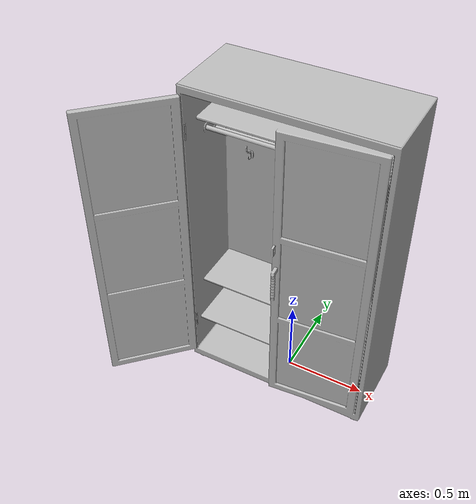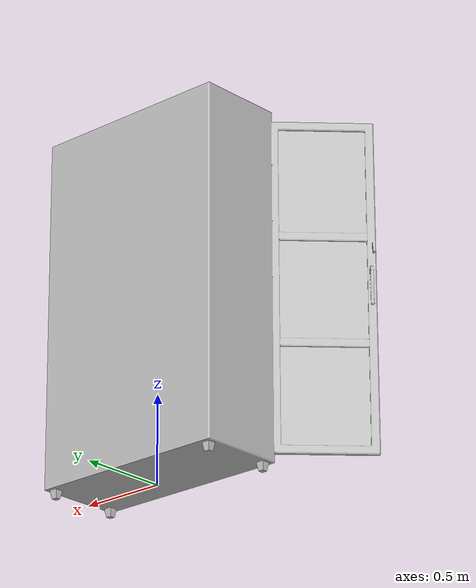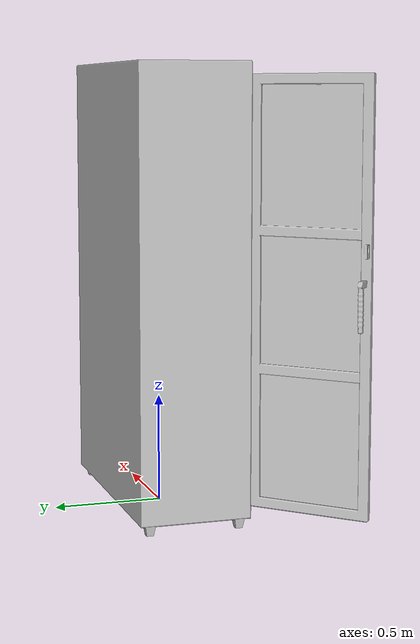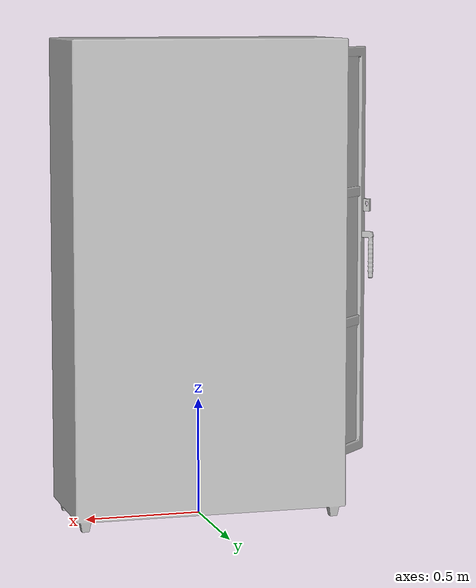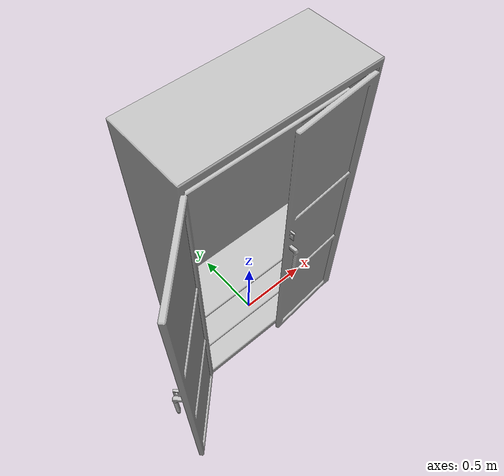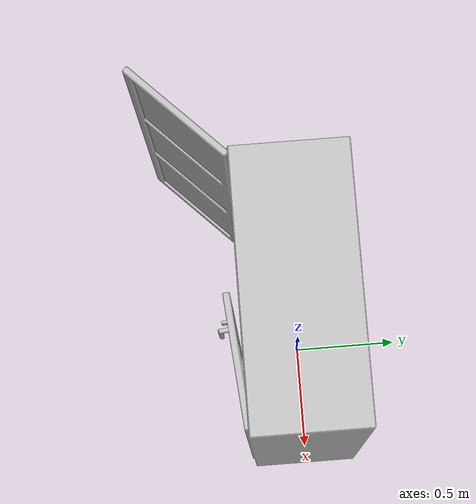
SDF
<?xml version="1.0" ?>
<sdf version='1.5'>
  <model name='locker_add'>
    <static>true</static>
      <link name='locker_add'>
        <pose frame=''>0 0 0 1.57 0 0</pose>
         <collision name='locker_add'>
          <geometry>
            <mesh>
              <scale>0.01 0.01 0.01</scale>
              <uri>model://locker_add/model.dae</uri>
            </mesh>
          </geometry>
          <max_contacts>10</max_contacts>
        </collision>
        <visual name='locker_add'>
        <cast_shadows>false</cast_shadows>
          <geometry>
            <mesh>
              <scale>0.01 0.01 0.01</scale>
              <uri>model://locker_add/model.dae</uri>
            </mesh>
          </geometry>
          <material>
            <script>
              <name>locker_add</name>
              <uri>model://locker_add/model.dae</uri>
            </script>
          </material>
        </visual>
      </link>
  </model>
</sdf>
